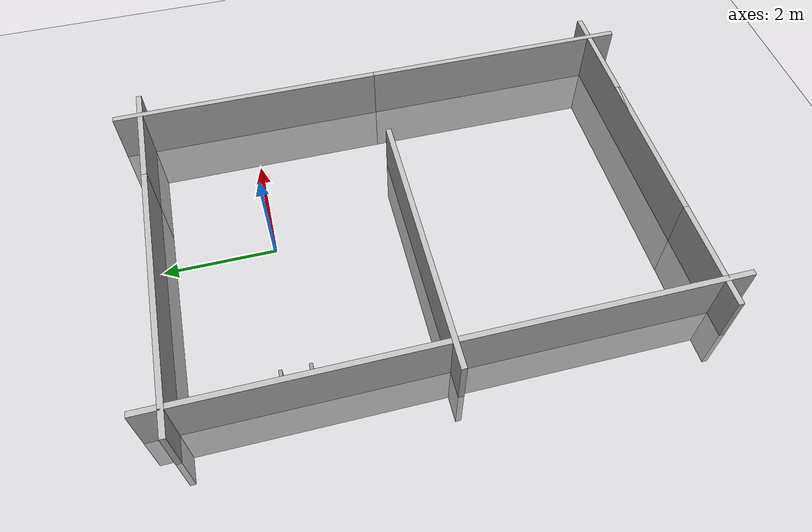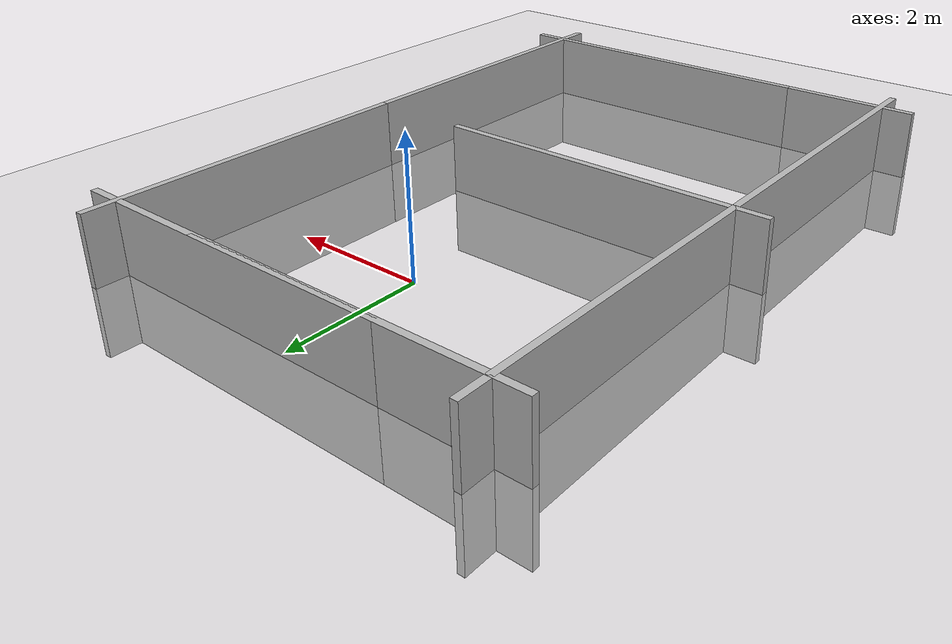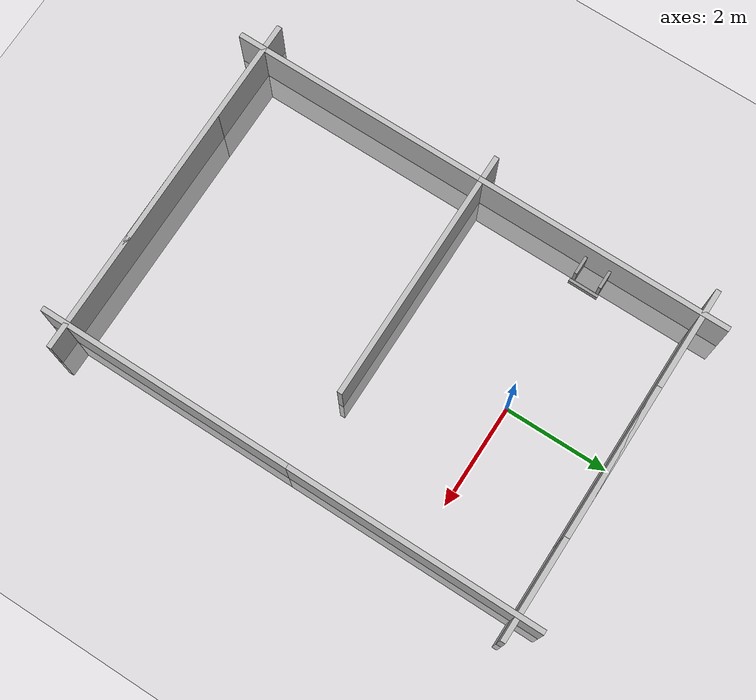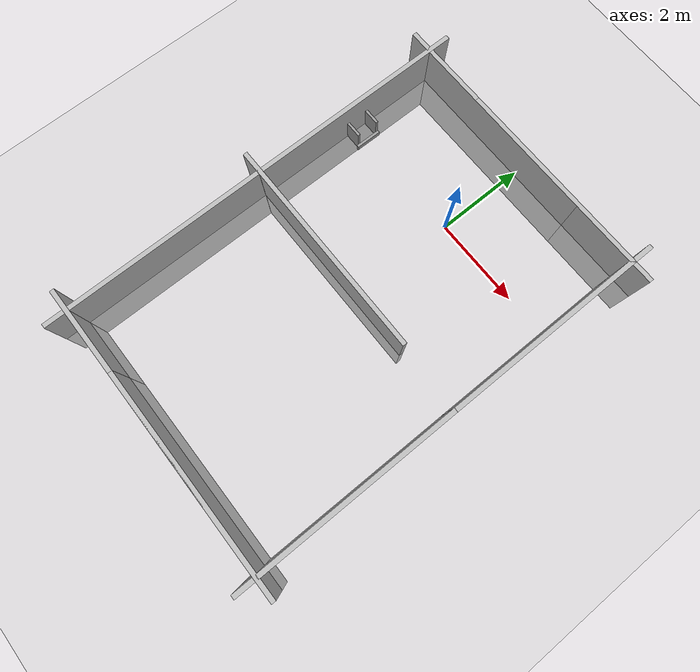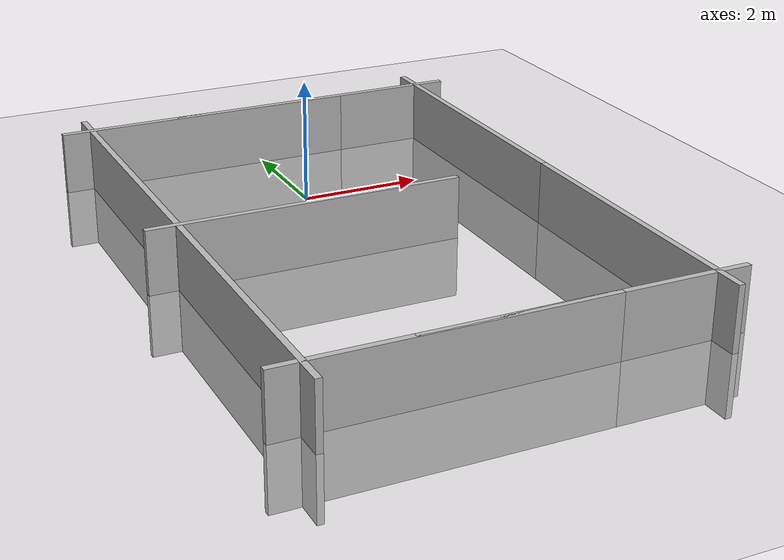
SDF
<sdf version="1.7">
 <world name="default">
  <light name="sun" type="directional">
   <pose>0 0 10 0 -0 0</pose>
   <diffuse>0.8 0.8 0.8 1</diffuse>
   <specular>0.2 0.2 0.2 1</specular>
   <attenuation>
    <range>1000</range>
    <constant>0.9</constant>
    <linear>0.01</linear>
    <quadratic>0.001</quadratic>
   </attenuation>
   <direction>-0.5 0.1 -0.9</direction>
   <spot><inner_angle>0</inner_angle><outer_angle>0</outer_angle><falloff>0</falloff></spot>
  </light>
  <model name="ground_plane">
   <static>1</static>
   <link name="link">
    <collision name="collision">
     <geometry><plane><normal>0 0 1</normal><size>100 100</size></plane></geometry>
     <surface>
      <contact><collide_bitmask>65535</collide_bitmask></contact>
      <friction><ode><mu>100</mu><mu2>50</mu2></ode></friction>
     </surface>
    </collision>
    <visual name="visual">
     <cast_shadows>0</cast_shadows>
     <geometry><plane><normal>0 0 1</normal><size>100 100</size></plane></geometry>
     <material>
      <script><uri>file://media/materials/scripts/gazebo.material</uri><name>Gazebo/Grey</name></script>
     </material>
    </visual>
   </link>
  </model>
  <gravity>0 0 -9.8</gravity>
  <magnetic_field>6e-06 2.3e-05 -4.2e-05</magnetic_field>
  <atmosphere type="adiabatic"/>
  <physics type="ode">
   <max_step_size>0.001</max_step_size>
   <real_time_factor>1</real_time_factor>
   <real_time_update_rate>1000</real_time_update_rate>
  </physics>
  <scene><ambient>0.4 0.4 0.4 1</ambient><background>0.7 0.7 0.7 1</background><shadows>1</shadows></scene>
  <spherical_coordinates>
   <surface_model>EARTH_WGS84</surface_model>
   <latitude_deg>0</latitude_deg>
   <longitude_deg>0</longitude_deg>
   <elevation>0</elevation>
   <heading_deg>0</heading_deg>
  </spherical_coordinates>
  <model name="room_wall_2x5m">
   <link name="link">
    <visual name="visual">
     <geometry><box><size>0.1 5 2</size></box></geometry>
     <material>
      <script>
       <uri>https://fuel.gazebosim.org/1.0/sebbyjp/models/room_wall_2x5m/1/files/material/script</uri>
       <uri>https://fuel.gazebosim.org/1.0/sebbyjp/models/room_wall_2x5m/1/files/material/textures</uri>
       <name>Custom/room_wall_2x5m</name>
      </script>
     </material>
    </visual>
    <collision name="collision"><geometry><box><size>0.1 5 2</size></box></geometry></collision>
   </link>
   <static>1</static>
   <pose>-3 0 0 0 -0 0</pose>
  </model>
  <model name="room_wall_2x5m_clone">
   <link name="link">
    <visual name="visual">
     <geometry><box><size>0.1 5 2</size></box></geometry>
     <material>
      <script>
       <uri>https://fuel.gazebosim.org/1.0/sebbyjp/models/room_wall_2x5m/1/files/material/script</uri>
       <uri>https://fuel.gazebosim.org/1.0/sebbyjp/models/room_wall_2x5m/1/files/material/textures</uri>
       <name>Custom/room_wall_2x5m</name>
      </script>
     </material>
    </visual>
    <collision name="collision"><geometry><box><size>0.1 5 2</size></box></geometry></collision>
   </link>
   <static>1</static>
   <pose>3 0 0 0 -0 0</pose>
  </model>
  <model name="room_wall_2x5m_clone_0">
   <link name="link">
    <visual name="visual">
     <geometry><box><size>0.1 5 2</size></box></geometry>
     <material>
      <script>
       <uri>https://fuel.gazebosim.org/1.0/sebbyjp/models/room_wall_2x5m/1/files/material/script</uri>
       <uri>https://fuel.gazebosim.org/1.0/sebbyjp/models/room_wall_2x5m/1/files/material/textures</uri>
       <name>Custom/room_wall_2x5m</name>
      </script>
     </material>
    </visual>
    <collision name="collision"><geometry><box><size>0.1 5 2</size></box></geometry></collision>
   </link>
   <static>1</static>
   <pose>-1 2 0 0 0 -1.5708</pose>
  </model>
  <model name="room_wall_2x5m_clone_1">
   <link name="link">
    <visual name="visual">
     <geometry><box><size>0.1 5 2</size></box></geometry>
     <material>
      <script>
       <uri>https://fuel.gazebosim.org/1.0/sebbyjp/models/room_wall_2x5m/1/files/material/script</uri>
       <uri>https://fuel.gazebosim.org/1.0/sebbyjp/models/room_wall_2x5m/1/files/material/textures</uri>
       <name>Custom/room_wall_2x5m</name>
      </script>
     </material>
    </visual>
    <collision name="collision"><geometry><box><size>0.1 5 2</size></box></geometry></collision>
   </link>
   <static>1</static>
   <pose>-1 -2.44813 0 0 0 -1.5708</pose>
  </model>
  <model name="room_wall_2x5m_clone_2">
   <link name="link">
    <visual name="visual">
     <geometry><box><size>0.1 5 2</size></box></geometry>
     <material>
      <script>
       <uri>https://fuel.gazebosim.org/1.0/sebbyjp/models/room_wall_2x5m/1/files/material/script</uri>
       <uri>https://fuel.gazebosim.org/1.0/sebbyjp/models/room_wall_2x5m/1/files/material/textures</uri>
       <name>Custom/room_wall_2x5m</name>
      </script>
     </material>
    </visual>
    <collision name="collision"><geometry><box><size>0.1 5 2</size></box></geometry></collision>
   </link>
   <static>1</static>
   <pose>-1 -7 0 0 0 -1.5708</pose>
  </model>
  <model name="room_wall_2x5m_clone_3">
   <link name="link">
    <visual name="visual">
     <geometry><box><size>0.1 5 2</size></box></geometry>
     <material>
      <script>
       <uri>https://fuel.gazebosim.org/1.0/sebbyjp/models/room_wall_2x5m/1/files/material/script</uri>
       <uri>https://fuel.gazebosim.org/1.0/sebbyjp/models/room_wall_2x5m/1/files/material/textures</uri>
       <name>Custom/room_wall_2x5m</name>
      </script>
     </material>
    </visual>
    <collision name="collision"><geometry><box><size>0.1 5 2</size></box></geometry></collision>
   </link>
   <static>1</static>
   <pose>1 2 0 0 0 -1.5708</pose>
  </model>
  <model name="room_wall_2x5m_clone_4">
   <link name="link">
    <visual name="visual">
     <geometry><box><size>0.1 5 2</size></box></geometry>
     <material>
      <script>
       <uri>https://fuel.gazebosim.org/1.0/sebbyjp/models/room_wall_2x5m/1/files/material/script</uri>
       <uri>https://fuel.gazebosim.org/1.0/sebbyjp/models/room_wall_2x5m/1/files/material/textures</uri>
       <name>Custom/room_wall_2x5m</name>
      </script>
     </material>
    </visual>
    <collision name="collision"><geometry><box><size>0.1 5 2</size></box></geometry></collision>
   </link>
   <static>1</static>
   <pose>-3 -5 0 0 -0 0</pose>
  </model>
  <model name="room_wall_2x5m_clone_5">
   <link name="link">
    <visual name="visual">
     <geometry><box><size>0.1 5 2</size></box></geometry>
     <material>
      <script>
       <uri>https://fuel.gazebosim.org/1.0/sebbyjp/models/room_wall_2x5m/1/files/material/script</uri>
       <uri>https://fuel.gazebosim.org/1.0/sebbyjp/models/room_wall_2x5m/1/files/material/textures</uri>
       <name>Custom/room_wall_2x5m</name>
      </script>
     </material>
    </visual>
    <collision name="collision"><geometry><box><size>0.1 5 2</size></box></geometry></collision>
   </link>
   <static>1</static>
   <pose>3 -5 0 0 -0 0</pose>
  </model>
  <model name="room_wall_2x5m_clone_6">
   <link name="link">
    <visual name="visual">
     <geometry><box><size>0.1 5 2</size></box></geometry>
     <material>
      <script>
       <uri>https://fuel.gazebosim.org/1.0/sebbyjp/models/room_wall_2x5m/1/files/material/script</uri>
       <uri>https://fuel.gazebosim.org/1.0/sebbyjp/models/room_wall_2x5m/1/files/material/textures</uri>
       <name>Custom/room_wall_2x5m</name>
      </script>
     </material>
    </visual>
    <collision name="collision"><geometry><box><size>0.1 5 2</size></box></geometry></collision>
   </link>
   <static>1</static>
   <pose>1 -7 0 0 0 -1.5708</pose>
  </model>
  <model name="unit_box">
   <pose>-2.77083 -0.231036 0.251195 -5e-06 0 0.000114</pose>
   <link name="link">
    <inertial>
     <mass>1</mass>
     <inertia>
      <ixx>0.166667</ixx>
      <ixy>0</ixy>
      <ixz>0</ixz>
      <iyy>0.166667</iyy>
      <iyz>0</iyz>
      <izz>0.166667</izz>
     </inertia>
    </inertial>
    <collision name="collision">
     <geometry><box><size>0.358336 0.0572897 0.50239</size></box></geometry>
    </collision>
    <visual name="visual">
     <geometry><box><size>0.358336 0.0572897 0.50239</size></box></geometry>
     <material>
      <script><name>Gazebo/Grey</name><uri>file://media/materials/scripts/gazebo.material</uri></script>
     </material>
    </visual>
   </link>
  </model>
  <model name="unit_box_clone">
   <pose>-2.77055 0.253533 0.251196 -6e-06 -0 0.001492</pose>
   <link name="link">
    <inertial>
     <mass>1</mass>
     <inertia>
      <ixx>0.166667</ixx>
      <ixy>0</ixy>
      <ixz>0</ixz>
      <iyy>0.166667</iyy>
      <iyz>0</iyz>
      <izz>0.166667</izz>
     </inertia>
    </inertial>
    <collision name="collision"><geometry><box><size>0.358336 0.05729 0.502391</size></box></geometry></collision>
    <visual name="visual">
     <geometry><box><size>0.358336 0.05729 0.502391</size></box></geometry>
     <material>
      <script><name>Gazebo/Grey</name><uri>file://media/materials/scripts/gazebo.material</uri></script>
     </material>
    </visual>
   </link>
  </model>
  <model name="unit_box_clone_0">
   <pose>-2.5617 0.001612 0.061645 -2.9e-05 -0 -1.57502</pose>
   <link name="link">
    <inertial>
     <mass>1</mass>
     <inertia>
      <ixx>0.166667</ixx>
      <ixy>0</ixy>
      <ixz>0</ixz>
      <iyy>0.166667</iyy>
      <iyz>0</iyz>
      <izz>0.166667</izz>
     </inertia>
    </inertial>
    <collision name="collision"><geometry><box><size>0.580393 0.05729 0.123289</size></box></geometry></collision>
    <visual name="visual">
     <geometry><box><size>0.580393 0.05729 0.123289</size></box></geometry>
     <material>
      <script><name>Gazebo/Grey</name><uri>file://media/materials/scripts/gazebo.material</uri></script>
     </material>
    </visual>
   </link>
  </model>
 </world>
</sdf>
